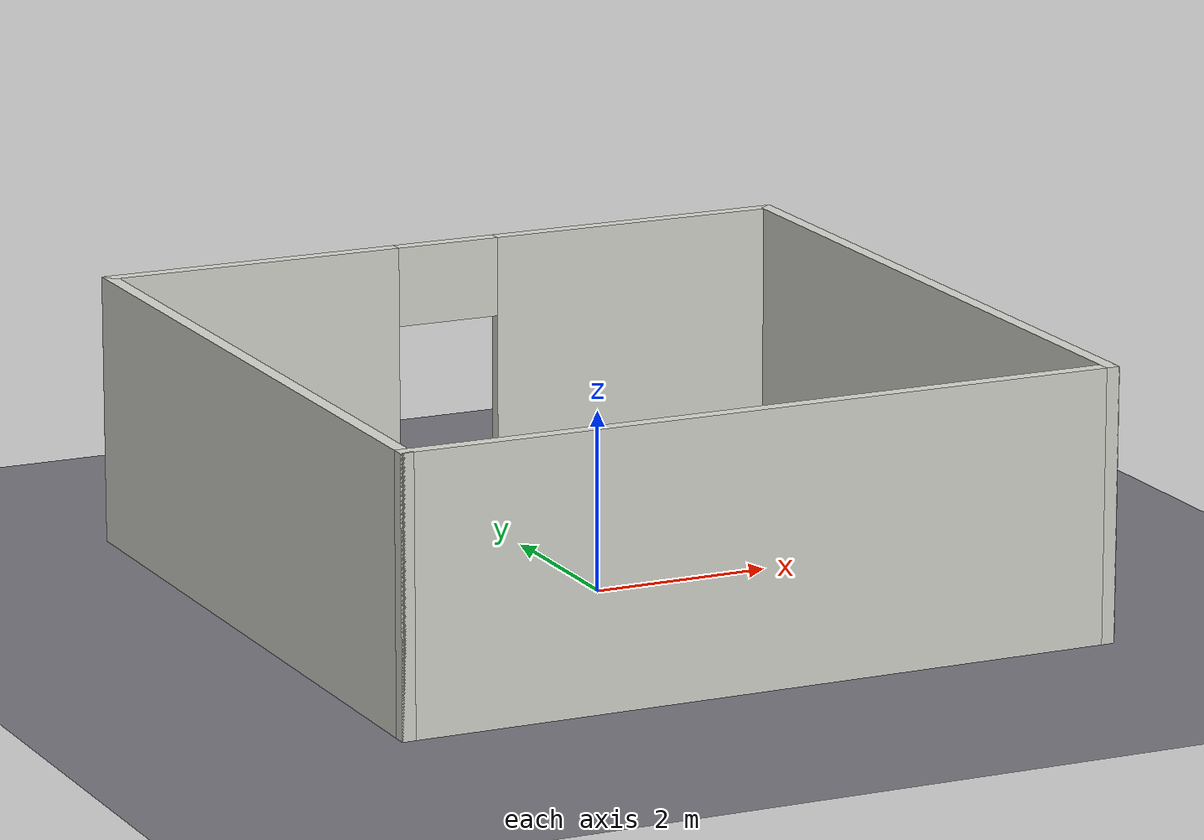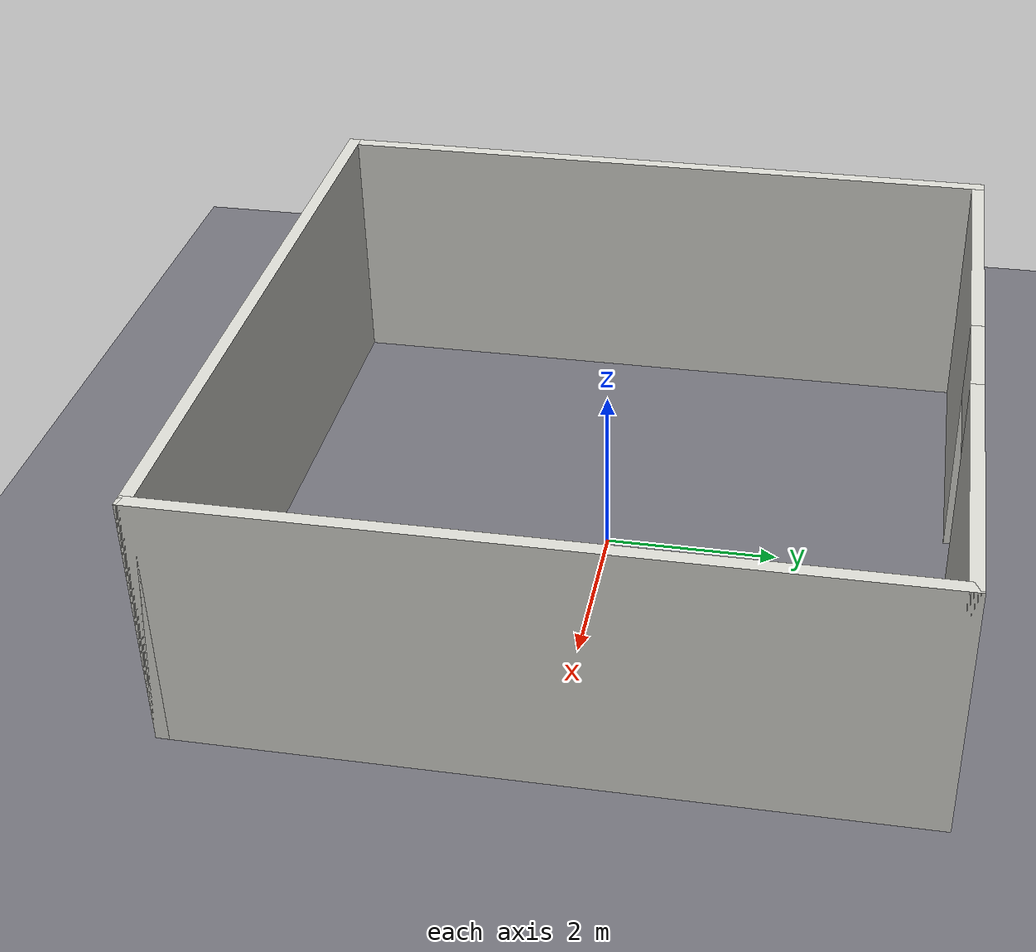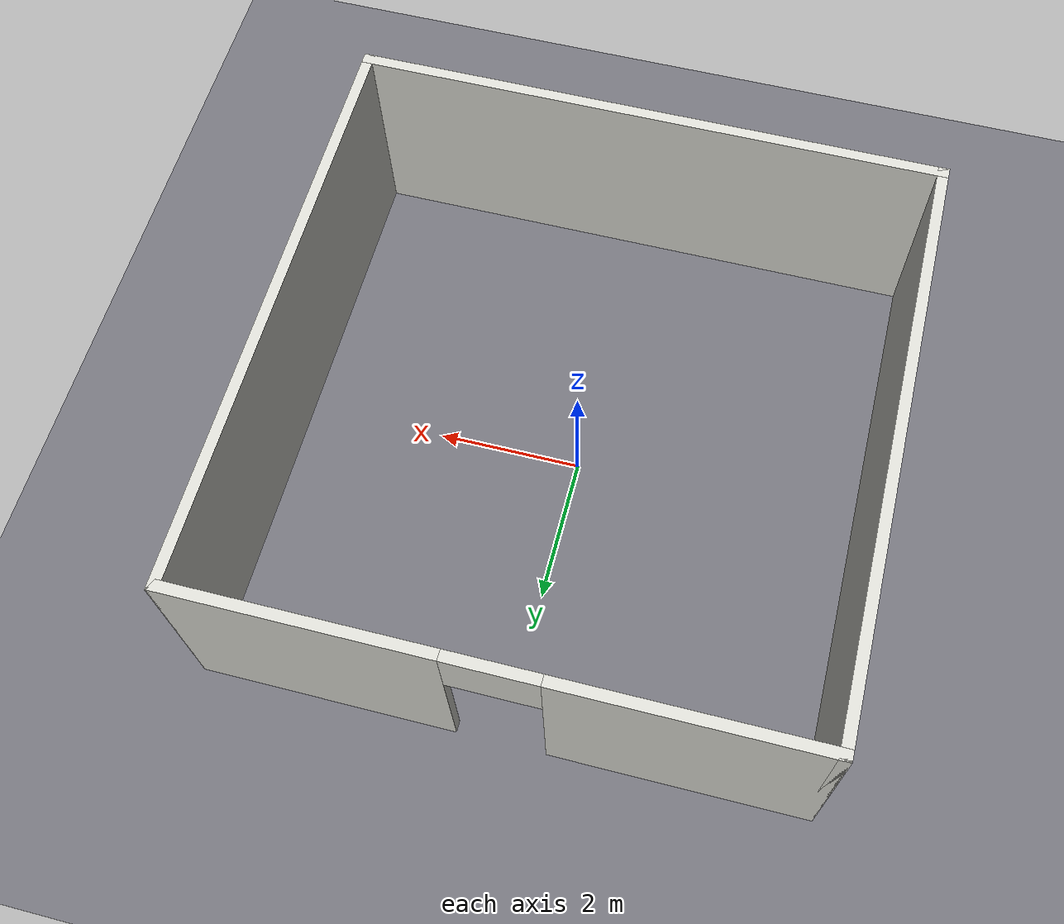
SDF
<sdf version="1.9">
 <world name="j10_indoor">
  <physics name="1ms" type="ignored">
   <max_step_size>0.001</max_step_size>
   <real_time_factor>1.0</real_time_factor>
  </physics>
  <plugin filename="gz-sim-physics-system" name="gz::sim::systems::Physics"/>
  <plugin filename="gz-sim-user-commands-system" name="gz::sim::systems::UserCommands"/>
  <plugin filename="gz-sim-scene-broadcaster-system" name="gz::sim::systems::SceneBroadcaster"/>
  <plugin filename="gz-sim-imu-system" name="gz::sim::systems::Imu"/>
  <plugin filename="gz-sim-sensors-system" name="gz::sim::systems::Sensors">
   <render_engine>ogre2</render_engine>
  </plugin>
  <gravity>0 0 -9.8</gravity>
  <magnetic_field>6.0e-06 2.3e-05 -4.2e-05</magnetic_field>
  <spherical_coordinates>
   <surface_model>EARTH_WGS84</surface_model>
   <world_frame_orientation>ENU</world_frame_orientation>
   <latitude_deg>-35.3632621</latitude_deg>
   <longitude_deg>149.1652374</longitude_deg>
   <elevation>10.0</elevation>
  </spherical_coordinates>
  <scene>
   <ambient>0.6 0.6 0.6 1</ambient>
   <background>0.75 0.78 0.82 1</background>
   <shadows>true</shadows>
  </scene>
  <light type="directional" name="sun">
   <pose>0 0 10 0 0 0</pose>
   <diffuse>0.8 0.8 0.8 1</diffuse>
   <specular>0.2 0.2 0.2 1</specular>
   <direction>-0.5 0.1 -0.9</direction>
  </light>
  <light type="point" name="room_light">
   <pose>0 0 2.8 0 0 0</pose>
   <diffuse>0.6 0.6 0.6 1</diffuse>
   <specular>0.1 0.1 0.1 1</specular>
   <attenuation>
    <range>20</range>
    <constant>0.4</constant>
    <linear>0.05</linear>
    <quadratic>0.005</quadratic>
   </attenuation>
   <cast_shadows>false</cast_shadows>
  </light>
  <model name="ground_plane">
   <static>true</static>
   <link name="link">
    <collision name="collision">
     <geometry><plane><normal>0 0 1</normal><size>100 100</size></plane></geometry>
    </collision>
    <visual name="visual">
     <geometry><plane><normal>0 0 1</normal><size>100 100</size></plane></geometry>
     <material>
      <ambient>0.35 0.35 0.38 1</ambient>
      <diffuse>0.45 0.45 0.48 1</diffuse>
      <specular>0.1 0.1 0.1 1</specular>
     </material>
    </visual>
   </link>
  </model>
  <model name="room">
   <static>true</static>
   <link name="walls">
    <collision name="south_collision">
     <pose>0 -4 1.5 0 0 0</pose>
     <geometry><box><size>8.15 0.15 3</size></box></geometry>
    </collision>
    <visual name="south_visual">
     <pose>0 -4 1.5 0 0 0</pose>
     <geometry><box><size>8.15 0.15 3</size></box></geometry>
     <material><ambient>0.7 0.7 0.68 1</ambient><diffuse>0.85 0.85 0.82 1</diffuse></material>
    </visual>
    <collision name="west_collision">
     <pose>-4 0 1.5 0 0 0</pose>
     <geometry><box><size>0.15 8.15 3</size></box></geometry>
    </collision>
    <visual name="west_visual">
     <pose>-4 0 1.5 0 0 0</pose>
     <geometry><box><size>0.15 8.15 3</size></box></geometry>
     <material><ambient>0.7 0.7 0.68 1</ambient><diffuse>0.85 0.85 0.82 1</diffuse></material>
    </visual>
    <collision name="east_collision">
     <pose>4 0 1.5 0 0 0</pose>
     <geometry><box><size>0.15 8.15 3</size></box></geometry>
    </collision>
    <visual name="east_visual">
     <pose>4 0 1.5 0 0 0</pose>
     <geometry><box><size>0.15 8.15 3</size></box></geometry>
     <material><ambient>0.7 0.7 0.68 1</ambient><diffuse>0.85 0.85 0.82 1</diffuse></material>
    </visual>
    <collision name="north_west_collision">
     <pose>-2.3375 4 1.5 0 0 0</pose>
     <geometry><box><size>3.475 0.15 3</size></box></geometry>
    </collision>
    <visual name="north_west_visual">
     <pose>-2.3375 4 1.5 0 0 0</pose>
     <geometry><box><size>3.475 0.15 3</size></box></geometry>
     <material><ambient>0.7 0.7 0.68 1</ambient><diffuse>0.85 0.85 0.82 1</diffuse></material>
    </visual>
    <collision name="north_east_collision">
     <pose>2.3375 4 1.5 0 0 0</pose>
     <geometry><box><size>3.475 0.15 3</size></box></geometry>
    </collision>
    <visual name="north_east_visual">
     <pose>2.3375 4 1.5 0 0 0</pose>
     <geometry><box><size>3.475 0.15 3</size></box></geometry>
     <material><ambient>0.7 0.7 0.68 1</ambient><diffuse>0.85 0.85 0.82 1</diffuse></material>
    </visual>
    <collision name="north_lintel_collision">
     <pose>0 4 2.55 0 0 0</pose>
     <geometry><box><size>1.2 0.15 0.9</size></box></geometry>
    </collision>
    <visual name="north_lintel_visual">
     <pose>0 4 2.55 0 0 0</pose>
     <geometry><box><size>1.2 0.15 0.9</size></box></geometry>
     <material><ambient>0.7 0.7 0.68 1</ambient><diffuse>0.85 0.85 0.82 1</diffuse></material>
    </visual>
   </link>
  </model>
 </world>
</sdf>
